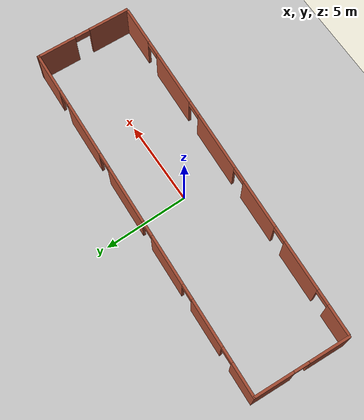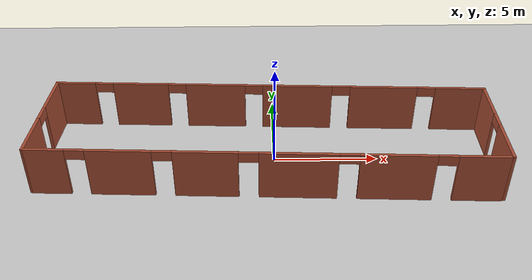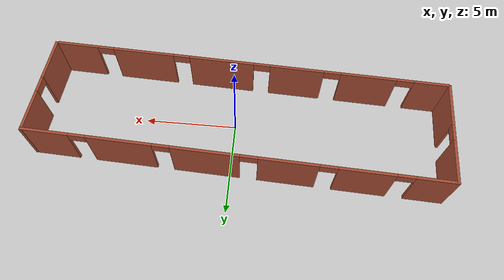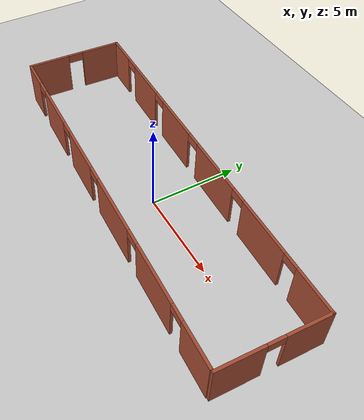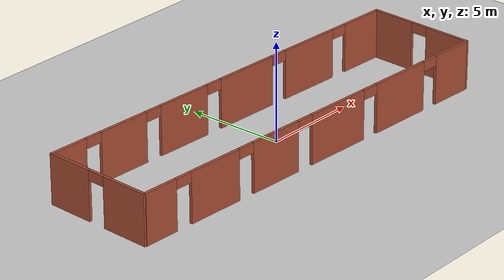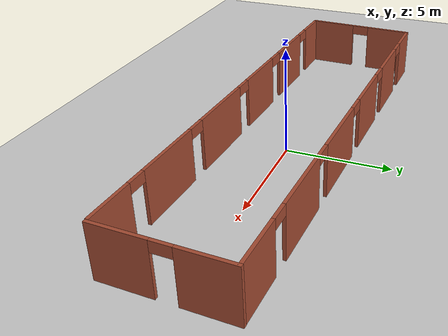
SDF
<sdf version="1.7">
 <world name="default">
  <light name="sun" type="directional">
   <pose>0 0 10 0 -0 0</pose>
   <diffuse>0.8 0.8 0.8 1</diffuse>
   <specular>0.2 0.2 0.2 1</specular>
   <attenuation>
    <range>1000</range>
    <constant>0.9</constant>
    <linear>0.01</linear>
    <quadratic>0.001</quadratic>
   </attenuation>
   <direction>-0.5 0.1 -0.9</direction>
   <spot><inner_angle>0</inner_angle><outer_angle>0</outer_angle><falloff>0</falloff></spot>
  </light>
  <model name="ground_plane">
   <static>1</static>
   <link name="link">
    <collision name="collision">
     <geometry><plane><normal>0 0 1</normal><size>100 100</size></plane></geometry>
     <surface><friction><ode><mu>100</mu><mu2>50</mu2></ode></friction></surface>
    </collision>
    <visual name="visual">
     <cast_shadows>0</cast_shadows>
     <geometry><plane><normal>0 0 1</normal><size>100 100</size></plane></geometry>
     <material>
      <script><uri>file://media/materials/scripts/gazebo.material</uri><name>Gazebo/Grey</name></script>
     </material>
    </visual>
   </link>
  </model>
  <gravity>0 0 -9.8</gravity>
  <magnetic_field>6e-06 2.3e-05 -4.2e-05</magnetic_field>
  <atmosphere type="adiabatic"/>
  <physics type="ode">
   <max_step_size>0.001</max_step_size>
   <real_time_factor>1</real_time_factor>
   <real_time_update_rate>1000</real_time_update_rate>
  </physics>
  <scene><ambient>0.4 0.4 0.4 1</ambient><background>0.7 0.7 0.7 1</background><shadows>1</shadows></scene>
  <spherical_coordinates>
   <surface_model>EARTH_WGS84</surface_model>
   <latitude_deg>0</latitude_deg>
   <longitude_deg>0</longitude_deg>
   <elevation>0</elevation>
   <heading_deg>0</heading_deg>
  </spherical_coordinates>
  <model name="Hallway">
   <pose>-0.322613 0.123368 0 0 0 -1.61393</pose>
   <link name="Wall_20">
    <pose>-2.81146 -0.006954 0 0 -0 -1.5708</pose>
    <visual name="Wall_20_Visual_0">
     <pose>-9.62522 0 1.25 0 -0 0</pose>
     <geometry><box><size>2.49956 0.15 2.5</size></box></geometry>
     <material>
      <script><uri>file://media/materials/scripts/gazebo.material</uri><name>Gazebo/Bricks</name></script>
      <ambient>1 0.764706 0.305882 1</ambient>
     </material>
     <meta><layer>0</layer></meta>
    </visual>
    <collision name="Wall_20_Collision_0">
     <geometry><box><size>2.49956 0.15 2.5</size></box></geometry>
     <pose>-9.62522 0 1.25 0 -0 0</pose>
    </collision>
    <visual name="Wall_20_Visual_1">
     <pose>-5.78129 0 1.25 0 -0 0</pose>
     <geometry><box><size>3.3883 0.15 2.5</size></box></geometry>
     <material>
      <script><uri>file://media/materials/scripts/gazebo.material</uri><name>Gazebo/Bricks</name></script>
      <ambient>1 0.764706 0.305882 1</ambient>
     </material>
     <meta><layer>0</layer></meta>
    </visual>
    <collision name="Wall_20_Collision_1">
     <geometry><box><size>3.3883 0.15 2.5</size></box></geometry>
     <pose>-5.78129 0 1.25 0 -0 0</pose>
    </collision>
    <visual name="Wall_20_Visual_2">
     <pose>-1.43081 0 1.25 0 -0 0</pose>
     <geometry><box><size>3.51265 0.15 2.5</size></box></geometry>
     <material>
      <script><uri>file://media/materials/scripts/gazebo.material</uri><name>Gazebo/Bricks</name></script>
      <ambient>1 0.764706 0.305882 1</ambient>
     </material>
     <meta><layer>0</layer></meta>
    </visual>
    <collision name="Wall_20_Collision_2">
     <geometry><box><size>3.51265 0.15 2.5</size></box></geometry>
     <pose>-1.43081 0 1.25 0 -0 0</pose>
    </collision>
    <visual name="Wall_20_Visual_3">
     <pose>2.73025 0 1.25 0 -0 0</pose>
     <geometry><box><size>3.00945 0.15 2.5</size></box></geometry>
     <material>
      <script><uri>file://media/materials/scripts/gazebo.material</uri><name>Gazebo/Bricks</name></script>
      <ambient>1 0.764706 0.305882 1</ambient>
     </material>
     <meta><layer>0</layer></meta>
    </visual>
    <collision name="Wall_20_Collision_3">
     <geometry><box><size>3.00945 0.15 2.5</size></box></geometry>
     <pose>2.73025 0 1.25 0 -0 0</pose>
    </collision>
    <visual name="Wall_20_Visual_4">
     <pose>6.53666 0 1.25 0 -0 0</pose>
     <geometry><box><size>2.80338 0.15 2.5</size></box></geometry>
     <material>
      <script><uri>file://media/materials/scripts/gazebo.material</uri><name>Gazebo/Bricks</name></script>
      <ambient>1 0.764706 0.305882 1</ambient>
     </material>
     <meta><layer>0</layer></meta>
    </visual>
    <collision name="Wall_20_Collision_4">
     <geometry><box><size>2.80338 0.15 2.5</size></box></geometry>
     <pose>6.53666 0 1.25 0 -0 0</pose>
    </collision>
    <visual name="Wall_20_Visual_5">
     <pose>9.85668 0 1.25 0 -0 0</pose>
     <geometry><box><size>2.03665 0.15 2.5</size></box></geometry>
     <material>
      <script><uri>file://media/materials/scripts/gazebo.material</uri><name>Gazebo/Bricks</name></script>
      <ambient>1 0.764706 0.305882 1</ambient>
     </material>
     <meta><layer>0</layer></meta>
    </visual>
    <collision name="Wall_20_Collision_5">
     <geometry><box><size>2.03665 0.15 2.5</size></box></geometry>
     <pose>9.85668 0 1.25 0 -0 0</pose>
    </collision>
    <visual name="Wall_20_Visual_6">
     <pose>-7.92544 0 2.25 0 -0 0</pose>
     <geometry><box><size>0.9 0.15 0.5</size></box></geometry>
     <material>
      <script><uri>file://media/materials/scripts/gazebo.material</uri><name>Gazebo/Bricks</name></script>
      <ambient>1 0.764706 0.305882 1</ambient>
     </material>
     <meta><layer>0</layer></meta>
    </visual>
    <collision name="Wall_20_Collision_6">
     <geometry><box><size>0.9 0.15 0.5</size></box></geometry>
     <pose>-7.92544 0 2.25 0 -0 0</pose>
    </collision>
    <visual name="Wall_20_Visual_7">
     <pose>-3.63713 0 2.25 0 -0 0</pose>
     <geometry><box><size>0.9 0.15 0.5</size></box></geometry>
     <material>
      <script><uri>file://media/materials/scripts/gazebo.material</uri><name>Gazebo/Bricks</name></script>
      <ambient>1 0.764706 0.305882 1</ambient>
     </material>
     <meta><layer>0</layer></meta>
    </visual>
    <collision name="Wall_20_Collision_7">
     <geometry><box><size>0.9 0.15 0.5</size></box></geometry>
     <pose>-3.63713 0 2.25 0 -0 0</pose>
    </collision>
    <visual name="Wall_20_Visual_8">
     <pose>0.775518 0 2.25 0 -0 0</pose>
     <geometry><box><size>0.9 0.15 0.5</size></box></geometry>
     <material>
      <script><uri>file://media/materials/scripts/gazebo.material</uri><name>Gazebo/Bricks</name></script>
      <ambient>1 0.764706 0.305882 1</ambient>
     </material>
     <meta><layer>0</layer></meta>
    </visual>
    <collision name="Wall_20_Collision_8">
     <geometry><box><size>0.9 0.15 0.5</size></box></geometry>
     <pose>0.775518 0 2.25 0 -0 0</pose>
    </collision>
    <visual name="Wall_20_Visual_9">
     <pose>4.68497 0 2.25 0 -0 0</pose>
     <geometry><box><size>0.9 0.15 0.5</size></box></geometry>
     <material>
      <script><uri>file://media/materials/scripts/gazebo.material</uri><name>Gazebo/Bricks</name></script>
      <ambient>1 0.764706 0.305882 1</ambient>
     </material>
     <meta><layer>0</layer></meta>
    </visual>
    <collision name="Wall_20_Collision_9">
     <geometry><box><size>0.9 0.15 0.5</size></box></geometry>
     <pose>4.68497 0 2.25 0 -0 0</pose>
    </collision>
    <visual name="Wall_20_Visual_10">
     <pose>8.38835 0 2.25 0 -0 0</pose>
     <geometry><box><size>0.9 0.15 0.5</size></box></geometry>
     <material>
      <script><uri>file://media/materials/scripts/gazebo.material</uri><name>Gazebo/Bricks</name></script>
      <ambient>1 0.764706 0.305882 1</ambient>
     </material>
     <meta><layer>0</layer></meta>
    </visual>
    <collision name="Wall_20_Collision_10">
     <geometry><box><size>0.9 0.15 0.5</size></box></geometry>
     <pose>8.38835 0 2.25 0 -0 0</pose>
    </collision>
   </link>
   <link name="Wall_22">
    <pose>2.81898 -0.027723 0 0 -0 -1.5708</pose>
    <visual name="Wall_22_Visual_0">
     <pose>-9.60254 0 1.25 0 -0 0</pose>
     <geometry><box><size>2.29492 0.15 2.5</size></box></geometry>
     <material>
      <script><uri>file://media/materials/scripts/gazebo.material</uri><name>Gazebo/Bricks</name></script>
      <ambient>1 0.764706 0.305882 1</ambient>
     </material>
     <meta><layer>0</layer></meta>
    </visual>
    <collision name="Wall_22_Collision_0">
     <geometry><box><size>2.29492 0.15 2.5</size></box></geometry>
     <pose>-9.60254 0 1.25 0 -0 0</pose>
    </collision>
    <visual name="Wall_22_Visual_1">
     <pose>-5.85635 0 1.25 0 -0 0</pose>
     <geometry><box><size>3.39745 0.15 2.5</size></box></geometry>
     <material>
      <script><uri>file://media/materials/scripts/gazebo.material</uri><name>Gazebo/Bricks</name></script>
      <ambient>1 0.764706 0.305882 1</ambient>
     </material>
     <meta><layer>0</layer></meta>
    </visual>
    <collision name="Wall_22_Collision_1">
     <geometry><box><size>3.39745 0.15 2.5</size></box></geometry>
     <pose>-5.85635 0 1.25 0 -0 0</pose>
    </collision>
    <visual name="Wall_22_Visual_2">
     <pose>-1.47644 0 1.25 0 -0 0</pose>
     <geometry><box><size>3.56237 0.15 2.5</size></box></geometry>
     <material>
      <script><uri>file://media/materials/scripts/gazebo.material</uri><name>Gazebo/Bricks</name></script>
      <ambient>1 0.764706 0.305882 1</ambient>
     </material>
     <meta><layer>0</layer></meta>
    </visual>
    <collision name="Wall_22_Collision_2">
     <geometry><box><size>3.56237 0.15 2.5</size></box></geometry>
     <pose>-1.47644 0 1.25 0 -0 0</pose>
    </collision>
    <visual name="Wall_22_Visual_3">
     <pose>2.67077 0 1.25 0 -0 0</pose>
     <geometry><box><size>2.93204 0.15 2.5</size></box></geometry>
     <material>
      <script><uri>file://media/materials/scripts/gazebo.material</uri><name>Gazebo/Bricks</name></script>
      <ambient>1 0.764706 0.305882 1</ambient>
     </material>
     <meta><layer>0</layer></meta>
    </visual>
    <collision name="Wall_22_Collision_3">
     <geometry><box><size>2.93204 0.15 2.5</size></box></geometry>
     <pose>2.67077 0 1.25 0 -0 0</pose>
    </collision>
    <visual name="Wall_22_Visual_4">
     <pose>6.52838 0 1.25 0 -0 0</pose>
     <geometry><box><size>2.98318 0.15 2.5</size></box></geometry>
     <material>
      <script><uri>file://media/materials/scripts/gazebo.material</uri><name>Gazebo/Bricks</name></script>
      <ambient>1 0.764706 0.305882 1</ambient>
     </material>
     <meta><layer>0</layer></meta>
    </visual>
    <collision name="Wall_22_Collision_4">
     <geometry><box><size>2.98318 0.15 2.5</size></box></geometry>
     <pose>6.52838 0 1.25 0 -0 0</pose>
    </collision>
    <visual name="Wall_22_Visual_5">
     <pose>9.83498 0 1.25 0 -0 0</pose>
     <geometry><box><size>1.83004 0.15 2.5</size></box></geometry>
     <material>
      <script><uri>file://media/materials/scripts/gazebo.material</uri><name>Gazebo/Bricks</name></script>
      <ambient>1 0.764706 0.305882 1</ambient>
     </material>
     <meta><layer>0</layer></meta>
    </visual>
    <collision name="Wall_22_Collision_5">
     <geometry><box><size>1.83004 0.15 2.5</size></box></geometry>
     <pose>9.83498 0 1.25 0 -0 0</pose>
    </collision>
    <visual name="Wall_22_Visual_6">
     <pose>-8.00508 0 2.25 0 -0 0</pose>
     <geometry><box><size>0.9 0.15 0.5</size></box></geometry>
     <material>
      <script><uri>file://media/materials/scripts/gazebo.material</uri><name>Gazebo/Bricks</name></script>
      <ambient>1 0.764706 0.305882 1</ambient>
     </material>
     <meta><layer>0</layer></meta>
    </visual>
    <collision name="Wall_22_Collision_6">
     <geometry><box><size>0.9 0.15 0.5</size></box></geometry>
     <pose>-8.00508 0 2.25 0 -0 0</pose>
    </collision>
    <visual name="Wall_22_Visual_7">
     <pose>-3.70762 0 2.25 0 -0 0</pose>
     <geometry><box><size>0.9 0.15 0.5</size></box></geometry>
     <material>
      <script><uri>file://media/materials/scripts/gazebo.material</uri><name>Gazebo/Bricks</name></script>
      <ambient>1 0.764706 0.305882 1</ambient>
     </material>
     <meta><layer>0</layer></meta>
    </visual>
    <collision name="Wall_22_Collision_7">
     <geometry><box><size>0.9 0.15 0.5</size></box></geometry>
     <pose>-3.70762 0 2.25 0 -0 0</pose>
    </collision>
    <visual name="Wall_22_Visual_8">
     <pose>0.754748 0 2.25 0 -0 0</pose>
     <geometry><box><size>0.9 0.15 0.5</size></box></geometry>
     <material>
      <script><uri>file://media/materials/scripts/gazebo.material</uri><name>Gazebo/Bricks</name></script>
      <ambient>1 0.764706 0.305882 1</ambient>
     </material>
     <meta><layer>0</layer></meta>
    </visual>
    <collision name="Wall_22_Collision_8">
     <geometry><box><size>0.9 0.15 0.5</size></box></geometry>
     <pose>0.754748 0 2.25 0 -0 0</pose>
    </collision>
    <visual name="Wall_22_Visual_9">
     <pose>4.58679 0 2.25 0 -0 0</pose>
     <geometry><box><size>0.9 0.15 0.5</size></box></geometry>
     <material>
      <script><uri>file://media/materials/scripts/gazebo.material</uri><name>Gazebo/Bricks</name></script>
      <ambient>1 0.764706 0.305882 1</ambient>
     </material>
     <meta><layer>0</layer></meta>
    </visual>
    <collision name="Wall_22_Collision_9">
     <geometry><box><size>0.9 0.15 0.5</size></box></geometry>
     <pose>4.58679 0 2.25 0 -0 0</pose>
    </collision>
    <visual name="Wall_22_Visual_10">
     <pose>8.46996 0 2.25 0 -0 0</pose>
     <geometry><box><size>0.9 0.15 0.5</size></box></geometry>
     <material>
      <script><uri>file://media/materials/scripts/gazebo.material</uri><name>Gazebo/Bricks</name></script>
      <ambient>1 0.764706 0.305882 1</ambient>
     </material>
     <meta><layer>0</layer></meta>
    </visual>
    <collision name="Wall_22_Collision_10">
     <geometry><box><size>0.9 0.15 0.5</size></box></geometry>
     <pose>8.46996 0 2.25 0 -0 0</pose>
    </collision>
   </link>
   <link name="Wall_27">
    <pose>-0.018979 10.807 0 0 -0 0</pose>
    <visual name="Wall_27_Visual_0">
     <pose>-1.69043 0 1.25 0 -0 0</pose>
     <geometry><box><size>2.36914 0.15 2.5</size></box></geometry>
     <material>
      <script><uri>file://media/materials/scripts/gazebo.material</uri><name>Gazebo/Bricks</name></script>
      <ambient>1 0.764706 0.305882 1</ambient>
     </material>
     <meta><layer>0</layer></meta>
    </visual>
    <collision name="Wall_27_Collision_0">
     <geometry><box><size>2.36914 0.15 2.5</size></box></geometry>
     <pose>-1.69043 0 1.25 0 -0 0</pose>
    </collision>
    <visual name="Wall_27_Visual_1">
     <pose>1.63457 0 1.25 0 -0 0</pose>
     <geometry><box><size>2.48086 0.15 2.5</size></box></geometry>
     <material>
      <script><uri>file://media/materials/scripts/gazebo.material</uri><name>Gazebo/Bricks</name></script>
      <ambient>1 0.764706 0.305882 1</ambient>
     </material>
     <meta><layer>0</layer></meta>
    </visual>
    <collision name="Wall_27_Collision_1">
     <geometry><box><size>2.48086 0.15 2.5</size></box></geometry>
     <pose>1.63457 0 1.25 0 -0 0</pose>
    </collision>
    <visual name="Wall_27_Visual_2">
     <pose>-0.05586 0 2.25 0 -0 0</pose>
     <geometry><box><size>0.9 0.15 0.5</size></box></geometry>
     <material>
      <script><uri>file://media/materials/scripts/gazebo.material</uri><name>Gazebo/Bricks</name></script>
      <ambient>1 0.764706 0.305882 1</ambient>
     </material>
     <meta><layer>0</layer></meta>
    </visual>
    <collision name="Wall_27_Collision_2">
     <geometry><box><size>0.9 0.15 0.5</size></box></geometry>
     <pose>-0.05586 0 2.25 0 -0 0</pose>
    </collision>
   </link>
   <link name="Wall_29">
    <pose>-0.011461 -10.807 0 0 -0 0</pose>
    <visual name="Wall_29_Visual_0">
     <pose>-1.67895 0 1.25 0 -0 0</pose>
     <geometry><box><size>2.39209 0.15 2.5</size></box></geometry>
     <material>
      <script><uri>file://media/materials/scripts/gazebo.material</uri><name>Gazebo/Bricks</name></script>
      <ambient>1 0.764706 0.305882 1</ambient>
     </material>
     <meta><layer>0</layer></meta>
    </visual>
    <collision name="Wall_29_Collision_0">
     <geometry><box><size>2.39209 0.15 2.5</size></box></geometry>
     <pose>-1.67895 0 1.25 0 -0 0</pose>
    </collision>
    <visual name="Wall_29_Visual_1">
     <pose>1.64604 0 1.25 0 -0 0</pose>
     <geometry><box><size>2.45791 0.15 2.5</size></box></geometry>
     <material>
      <script><uri>file://media/materials/scripts/gazebo.material</uri><name>Gazebo/Bricks</name></script>
      <ambient>1 0.764706 0.305882 1</ambient>
     </material>
     <meta><layer>0</layer></meta>
    </visual>
    <collision name="Wall_29_Collision_1">
     <geometry><box><size>2.45791 0.15 2.5</size></box></geometry>
     <pose>1.64604 0 1.25 0 -0 0</pose>
    </collision>
    <visual name="Wall_29_Visual_2">
     <pose>-0.032909 0 2.25 0 -0 0</pose>
     <geometry><box><size>0.9 0.15 0.5</size></box></geometry>
     <material>
      <script><uri>file://media/materials/scripts/gazebo.material</uri><name>Gazebo/Bricks</name></script>
      <ambient>1 0.764706 0.305882 1</ambient>
     </material>
     <meta><layer>0</layer></meta>
    </visual>
    <collision name="Wall_29_Collision_2">
     <geometry><box><size>0.9 0.15 0.5</size></box></geometry>
     <pose>-0.032909 0 2.25 0 -0 0</pose>
    </collision>
   </link>
   <static>1</static>
  </model>
 </world>
</sdf>
